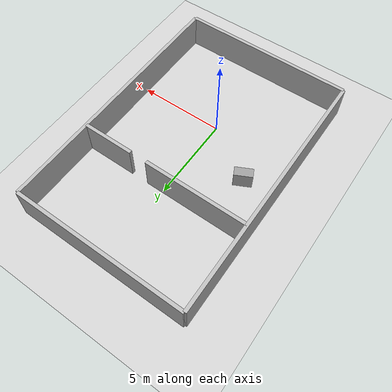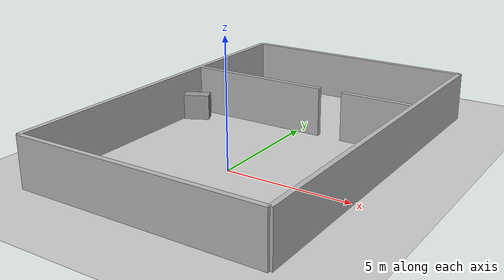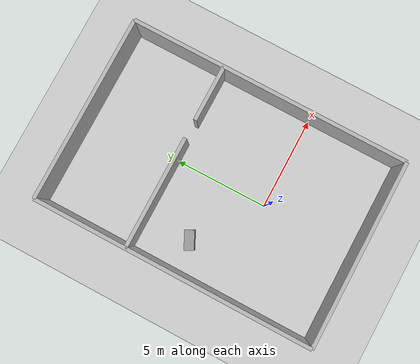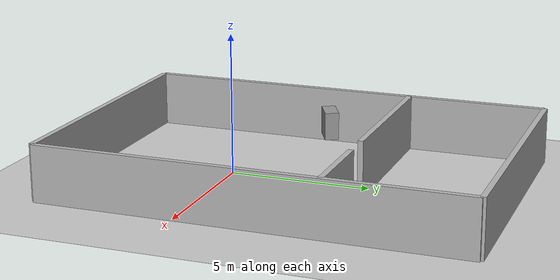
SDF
<sdf version="1.4">
 <world name="default">
  <physics type="ode">
   <gravity>0 0 -9.81</gravity>
   <ode>
    <solver><type>quick</type><iters>20</iters><sor>1.0</sor></solver>
    <constraints>
     <cfm>0.0</cfm>
     <erp>0.2</erp>
     <contact_max_correcting_vel>100.0</contact_max_correcting_vel>
     <contact_surface_layer>0.0</contact_surface_layer>
    </constraints>
   </ode>
   <real_time_update_rate>1000</real_time_update_rate>
   <max_step_size>0.001</max_step_size>
  </physics>
  <include><uri>model://sun</uri></include>
  <include><uri>model://ground_plane</uri></include>
  <model name="wall_1_model">
   <pose>0 -5 1 0 0 0</pose>
   <static>true</static>
   <link name="wall_1_body">
    <inertial>
     <mass>1.0</mass>
     <inertia><ixx>1.0</ixx><ixy>0.0</ixy><ixz>0.0</ixz><iyy>1.0</iyy><iyz>0.0</iyz><izz>1.0</izz></inertia>
    </inertial>
    <collision name="collision"><geometry><box><size>10 0.2 2</size></box></geometry></collision>
    <visual name="visual"><geometry><box><size>10 0.2 2</size></box></geometry></visual>
   </link>
  </model>
  <model name="wall_2_model">
   <pose>0 10 1 0 0 0</pose>
   <static>true</static>
   <link name="wall_2_body">
    <inertial>
     <mass>1.0</mass>
     <inertia><ixx>1.0</ixx><ixy>0.0</ixy><ixz>0.0</ixz><iyy>1.0</iyy><iyz>0.0</iyz><izz>1.0</izz></inertia>
    </inertial>
    <collision name="collision"><geometry><box><size>10 0.2 2</size></box></geometry></collision>
    <visual name="visual"><geometry><box><size>10 0.2 2</size></box></geometry></visual>
   </link>
  </model>
  <model name="wall_3_model">
   <pose>-5 2.5 1 0 0 0</pose>
   <static>true</static>
   <link name="wall_3_body">
    <inertial>
     <mass>1.0</mass>
     <inertia><ixx>1.0</ixx><ixy>0.0</ixy><ixz>0.0</ixz><iyy>1.0</iyy><iyz>0.0</iyz><izz>1.0</izz></inertia>
    </inertial>
    <collision name="collision"><geometry><box><size>0.2 15 2</size></box></geometry></collision>
    <visual name="visual"><geometry><box><size>0.2 15 2</size></box></geometry></visual>
   </link>
  </model>
  <model name="wall_4_model">
   <pose>5 2.5 1 0 0 0</pose>
   <static>true</static>
   <link name="wall_4_body">
    <inertial>
     <mass>1.0</mass>
     <inertia><ixx>1.0</ixx><ixy>0.0</ixy><ixz>0.0</ixz><iyy>1.0</iyy><iyz>0.0</iyz><izz>1.0</izz></inertia>
    </inertial>
    <collision name="collision"><geometry><box><size>0.2 15 2</size></box></geometry></collision>
    <visual name="visual"><geometry><box><size>0.2 15 2</size></box></geometry></visual>
   </link>
  </model>
  <model name="wall_5_model">
   <pose>-2 5 1 0 0 0</pose>
   <static>true</static>
   <link name="wall_5_body">
    <inertial>
     <mass>1.0</mass>
     <inertia><ixx>1.0</ixx><ixy>0.0</ixy><ixz>0.0</ixz><iyy>1.0</iyy><iyz>0.0</iyz><izz>1.0</izz></inertia>
    </inertial>
    <collision name="collision"><geometry><box><size>6 0.2 2</size></box></geometry></collision>
    <visual name="visual"><geometry><box><size>6 0.2 2</size></box></geometry></visual>
   </link>
  </model>
  <model name="wall_6_model">
   <pose>3.5 5 1 0 0 0</pose>
   <static>true</static>
   <link name="wall_6_body">
    <inertial>
     <mass>1.0</mass>
     <inertia><ixx>1.0</ixx><ixy>0.0</ixy><ixz>0.0</ixz><iyy>1.0</iyy><iyz>0.0</iyz><izz>1.0</izz></inertia>
    </inertial>
    <collision name="collision"><geometry><box><size>3 0.2 2</size></box></geometry></collision>
    <visual name="visual"><geometry><box><size>3 0.2 2</size></box></geometry></visual>
   </link>
  </model>
  <model name="object">
   <pose>-3.25 2.5 1.2 0 0 -1.107</pose>
   <link name="link">
    <inertial>
     <mass>1</mass>
     <inertia>
      <ixx>0.166667</ixx>
      <ixy>0</ixy>
      <ixz>0</ixz>
      <iyy>0.166667</iyy>
      <iyz>0</iyz>
      <izz>0.166667</izz>
     </inertia>
    </inertial>
    <collision name="collision"><geometry><box><size>0.5 1 1</size></box></geometry></collision>
    <visual name="visual">
     <geometry><box><size>0.5 1 1</size></box></geometry>
     <material>
      <script><name>Gazebo/Grey</name><uri>file://media/materials/scripts/gazebo.material</uri></script>
     </material>
    </visual>
   </link>
  </model>
 </world>
</sdf>
